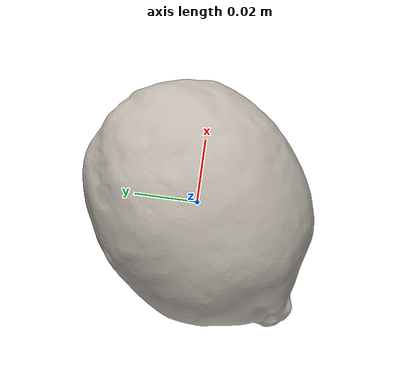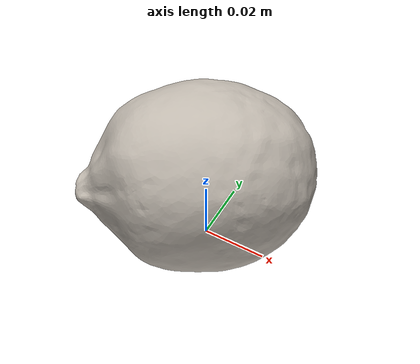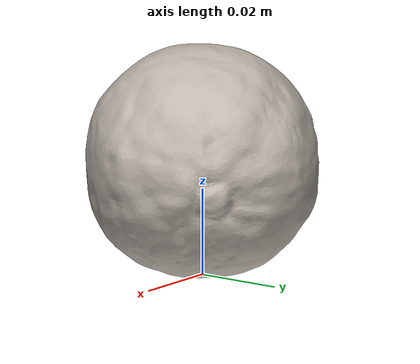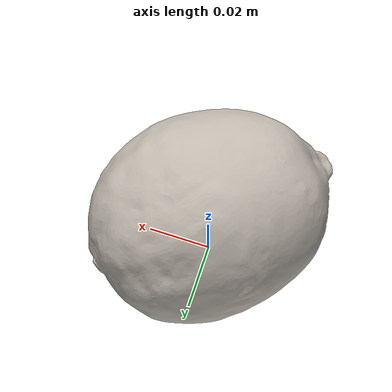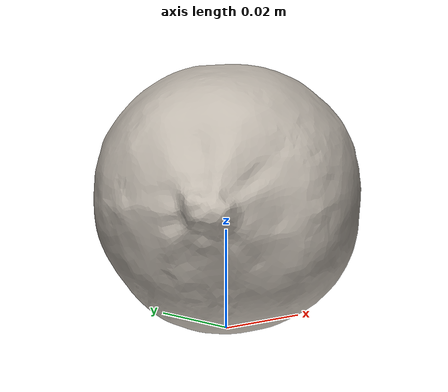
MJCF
<mujoco model="lemon">
  <compiler angle="radian" meshdir="." texturedir="."/>
  <asset>
    <mesh name="lemon_mesh" file="lemon.obj" maxhullvert="64"/>
    <texture name="lemon_tex" type="2d" file="lemon.png"/>
    <material name="lemon_mat" texture="lemon_tex" specular="0.25" shininess="0.3"/>
  </asset>
  <worldbody>
    <body name="lemon" pos="0 0 0">
      <inertial pos="-0.000191493 -0.000639282 0.0264435" quat="0.467518 0.100121 0.704392 0.524628" mass="0.1" diaginertia="3.52236e-05 3.50466e-05 2.87684e-05"/>
      <site name="lemon_center" pos="0 0 0" size="0.005" rgba="0 0 0 0"/>
      <geom name="lemon_vis0" type="mesh" mesh="lemon_mesh" pos="0.010579 -0.0216535 0.000235" material="lemon_mat" group="2" contype="0" conaffinity="0"/>
      <geom name="lemon_col1" type="mesh" mesh="lemon_mesh" pos="0.010579 -0.0216535 0.000235" rgba="0.5 0.5 0.5 0.3" group="3" condim="6" friction="1 0.02 0.004"/>
    </body>
  </worldbody>
</mujoco>
